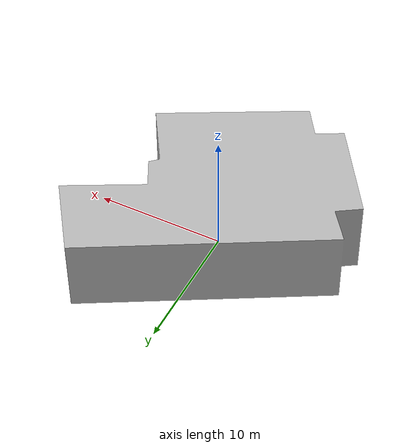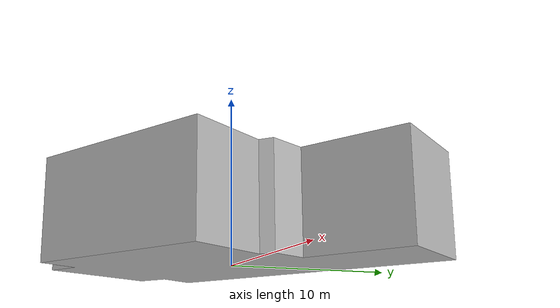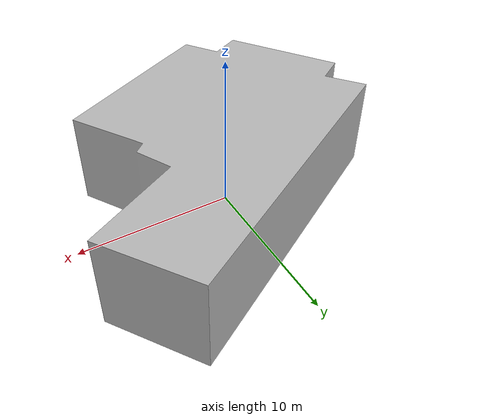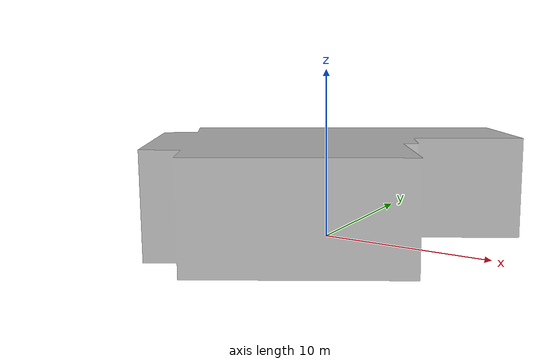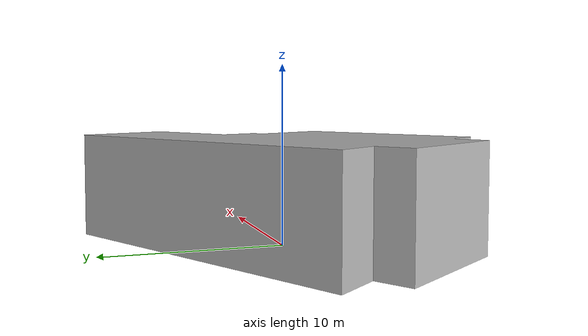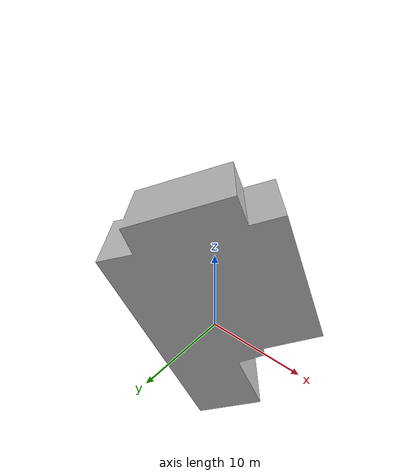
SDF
<?xml version="1.0" ?>
<sdf version="1.7">
  <model name="building_5247_assumed_a_casa">
    <static>true</static>
    <link name="building_link">
      <visual name="building_visual">
        <geometry>
          <mesh>
            <uri>model://building_5247_assumed_a_casa/meshes/construction_5247_assumed_A_Casa_h6m.obj</uri>
          </mesh>
        </geometry>
      </visual>
    <collision name="building_collision">
      <geometry>
        <mesh>
          <uri>model://building_5247_assumed_a_casa/meshes/construction_5247_assumed_A_Casa_h6m.obj</uri>
        </mesh>
      </geometry>
    </collision>
    </link>
  </model>
</sdf>
